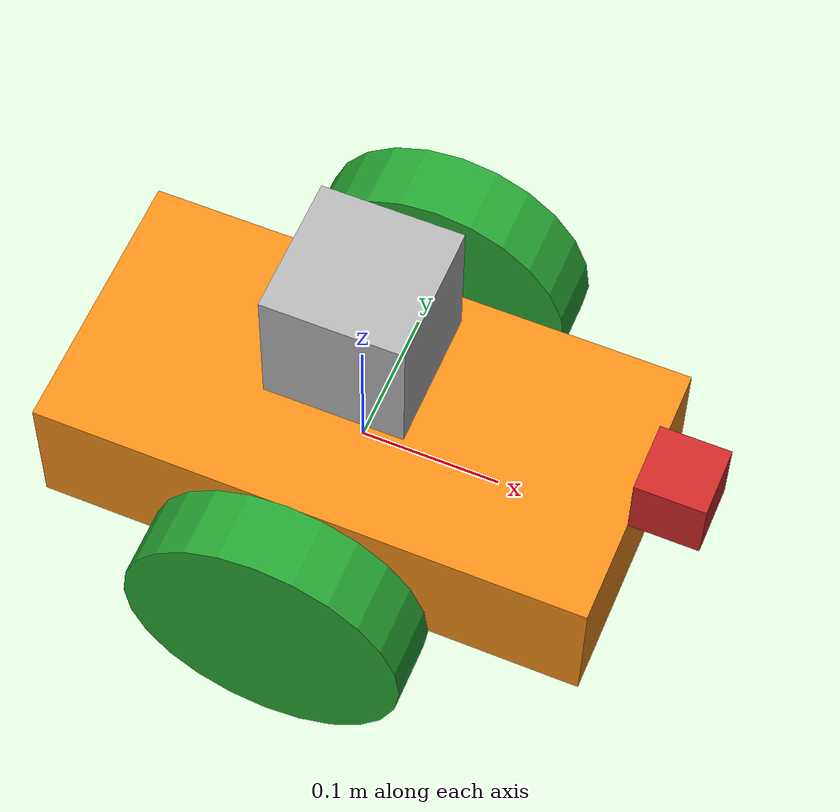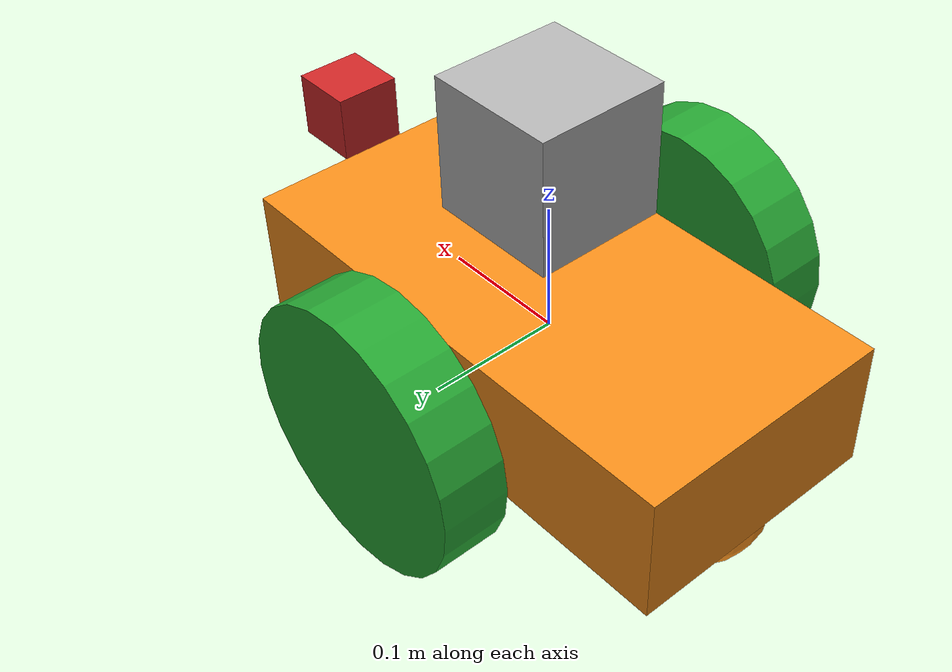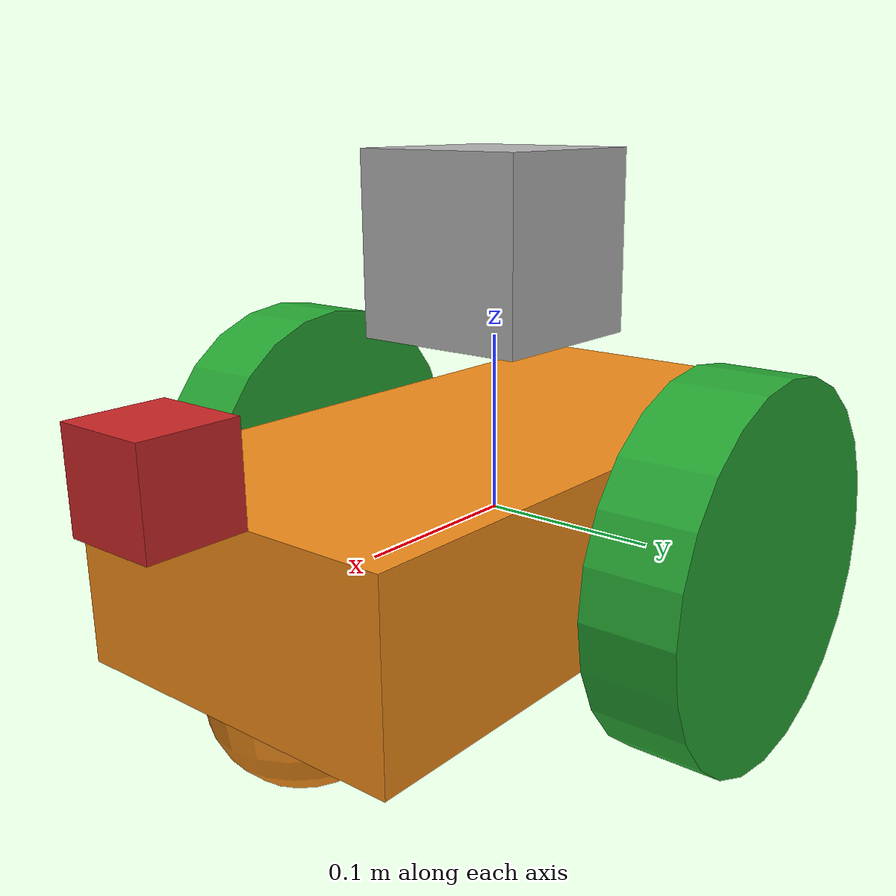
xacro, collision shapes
<?xml version='1.0'?>

<robot name="mogi_bot" xmlns:xacro="http://www.ros.org/wiki/xacro">

  <!-- Gazebo plugin -->
  <xacro:include filename="$(find bme_gazebo_sensors)/urdf/mogi_bot.gazebo" />
  <!-- RViz colors -->
  <xacro:include filename="$(find bme_gazebo_sensors)/urdf/materials.xacro" />

  <link name="base_footprint"></link>

  <joint name="base_footprint_joint" type="fixed">
    <origin xyz="0 0 0" rpy="0 0 0" />
    <parent link="base_footprint"/>
    <child link="base_link" />
  </joint>

  <!-- Robot chassis -->
  <link name='base_link'>
    <pose>0 0 0.1 0 0 0</pose>

    <inertial>
      <mass value="15.0"/>
      <origin xyz="0.0 0 0" rpy="0 0 0"/>
      <inertia
          ixx="0.1" ixy="0" ixz="0"
          iyy="0.1" iyz="0"
          izz="0.1"
      />
    </inertial>

    <collision name='collision'>
      <origin xyz="0 0 0" rpy="0 0 0"/>
      <geometry>
        <box size=".4 .2 .1"/>
      </geometry>
    </collision>

    <visual name='base_link_visual'>
      <origin xyz="0 0 0" rpy="0 0 0"/>
      <geometry>
        <!--box size=".4 .2 .1"/-->
        <mesh filename = "package://bme_gazebo_sensors/meshes/mogi_bot.dae"/>
      </geometry>
      <material name="orange"/>
    </visual>

    <collision name='rear_caster_collision'>
      <origin xyz="-0.15 0 -0.05" rpy="0 0 0"/>
      <geometry>
        <sphere radius="0.0499"/>
      </geometry>
    </collision>

    <visual name='rear_caster_visual'>
      <origin xyz="-0.15 0 -0.05" rpy="0 0 0"/>
      <geometry>
        <sphere radius="0.05"/>
      </geometry>
    </visual>

    <collision name='front_caster_collision'>
      <origin xyz="0.15 0 -0.05" rpy="0 0 0"/>
      <geometry>
        <sphere radius="0.0499"/>
      </geometry>
    </collision>

    <visual name='front_caster_visual'>
      <origin xyz="0.15 0 -0.05" rpy="0 0 0"/>
      <geometry>
        <sphere radius="0.05"/>
      </geometry>
    </visual>

  </link>

  <!-- Wheels -->
  <joint type="continuous" name="left_wheel_joint">
    <origin xyz="0 0.15 0" rpy="0 0 0"/>
    <child link="left_wheel"/>
    <parent link="base_link"/>
    <axis xyz="0 1 0" rpy="0 0 0"/>
    <limit effort="10000" velocity="1000"/>
    <dynamics damping="1.0" friction="1.0"/>
  </joint>

  <link name='left_wheel'>
    <inertial>
      <mass value="5.0"/>
      <origin xyz="0 0 0" rpy="0 1.5707 1.5707"/>
      <inertia
          ixx="0.1" ixy="0" ixz="0"
          iyy="0.1" iyz="0"
          izz="0.1"
      />
    </inertial>

    <collision name='collision'>
      <origin xyz="0 0 0" rpy="0 1.5707 1.5707"/>
      <geometry>
        <cylinder radius=".1" length=".05"/>
      </geometry>
    </collision>

    <visual name='left_wheel_visual'>
      <origin xyz="0 0 0" rpy="0 1.5707 1.5707"/>
      <geometry>
        <!--cylinder radius=".1" length=".05"/-->
        <mesh filename = "package://bme_gazebo_sensors/meshes/wheel.dae"/>
      </geometry>
      <material name="green"/>
    </visual>
  </link>

  <joint type="continuous" name="right_wheel_joint">
    <origin xyz="0 -0.15 0" rpy="0 0 0"/>
    <child link="right_wheel"/>
    <parent link="base_link"/>
    <axis xyz="0 1 0" rpy="0 0 0"/>
    <limit effort="10000" velocity="1000"/>
    <dynamics damping="1.0" friction="1.0"/>
  </joint>

  <link name='right_wheel'>
    <inertial>
      <mass value="5.0"/>
      <origin xyz="0 0 0" rpy="0 1.5707 1.5707"/>
      <inertia
          ixx="0.1" ixy="0" ixz="0"
          iyy="0.1" iyz="0"
          izz="0.1"
      />
    </inertial>

    <collision name='collision'>
      <origin xyz="0 0 0" rpy="0 1.5707 1.5707"/>
      <geometry>
        <cylinder radius=".1" length=".05"/>
      </geometry>
    </collision>

    <visual name='right_wheel_visual'>
      <origin xyz="0 0 0" rpy="0 1.5707 1.5707"/>
      <geometry>
        <!--cylinder radius=".1" length=".05"/-->
        <mesh filename = "package://bme_gazebo_sensors/meshes/wheel.dae"/>
      </geometry>
      <material name="green"/>
    </visual>
  </link>

    <!-- Camera -->
  <joint type="fixed" name="camera_joint">
    <origin xyz="0.225 0 0.075" rpy="0 0 0"/>
    <child link="camera_link"/>
    <parent link="base_link"/>
    <axis xyz="0 1 0" />
  </joint>

  <link name='camera_link'>
    <pose>0 0 0 0 0 0</pose>
    <inertial>
      <mass value="0.1"/>
      <origin xyz="0 0 0" rpy="0 0 0"/>
      <inertia
          ixx="1e-6" ixy="0" ixz="0"
          iyy="1e-6" iyz="0"
          izz="1e-6"
      />
    </inertial>

    <collision name='collision'>
      <origin xyz="0 0 0" rpy="0 0 0"/>
      <geometry>
        <box size=".05 .05 .05"/>
      </geometry>
    </collision>

    <visual name='camera_link_visual'>
      <origin xyz="0 0 0" rpy="0 0 0"/>
      <geometry>
        <box size=".05 .05 .05"/>
      </geometry>
    </visual>

  </link>

  <gazebo reference="camera_link">
    <material>Gazebo/Red</material>
  </gazebo>

    <joint type="fixed" name="camera_optical_joint"> <!-- Hogy helyesen overlayeljen a kamera-->
    <origin xyz="0 0 0" rpy="-1.5707 0 -1.5707"/>
    <child link="camera_link_optical"/>
    <parent link="camera_link"/>
  </joint>

  <link name="camera_link_optical">
  </link>

    <!-- IMU -->
  <joint name="imu_joint" type="fixed">
    <origin xyz="0 0 0" rpy="0 0 0" />
    <parent link="base_link"/>
    <child link="imu_link" />
  </joint>

  <link name="imu_link">
  </link>

  <!-- Lidar 2D -->
  <joint type="fixed" name="scan_joint">
    <origin xyz="0.0 0 0.15" rpy="0 0 0"/>
    <child link="scan_link"/>
    <parent link="base_link"/>
    <axis xyz="0 1 0" rpy="0 0 0"/>
  </joint>

  <link name='scan_link'>
    <inertial>
      <mass value="1e-5"/>
      <origin xyz="0 0 0" rpy="0 0 0"/>
      <inertia
          ixx="1e-6" ixy="0" ixz="0"
          iyy="1e-6" iyz="0"
          izz="1e-6"
      />
    </inertial>

    <collision name='collision'>
      <origin xyz="0 0 0" rpy="0 0 0"/>
      <geometry>
        <box size=".1 .1 .1"/>
      </geometry>
    </collision>

    <visual name='scan_link_visual'>
      <origin xyz="0 0 0" rpy="0 0 0"/>
      <geometry>
        <mesh filename = "package://bme_gazebo_sensors/meshes/lidar.dae"/>
      </geometry>
    </visual>

  </link>

</robot>
